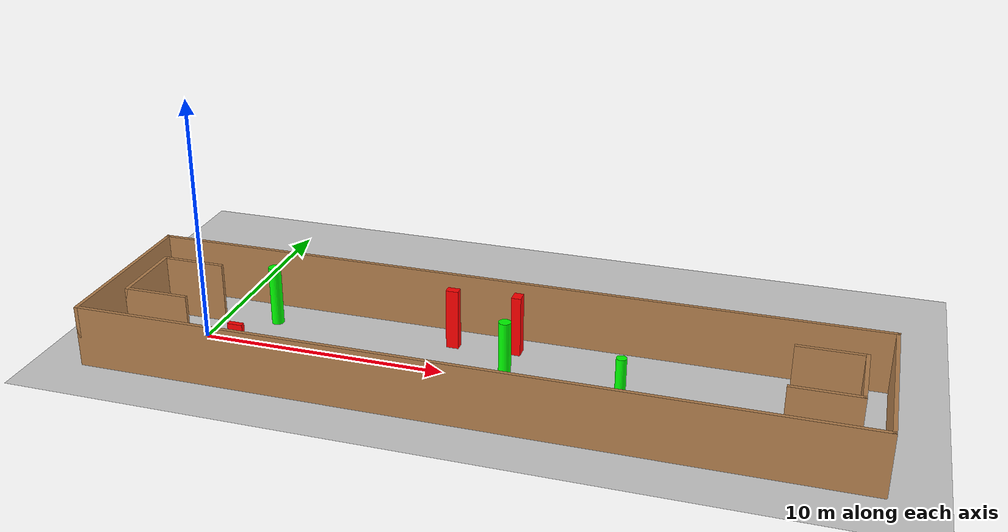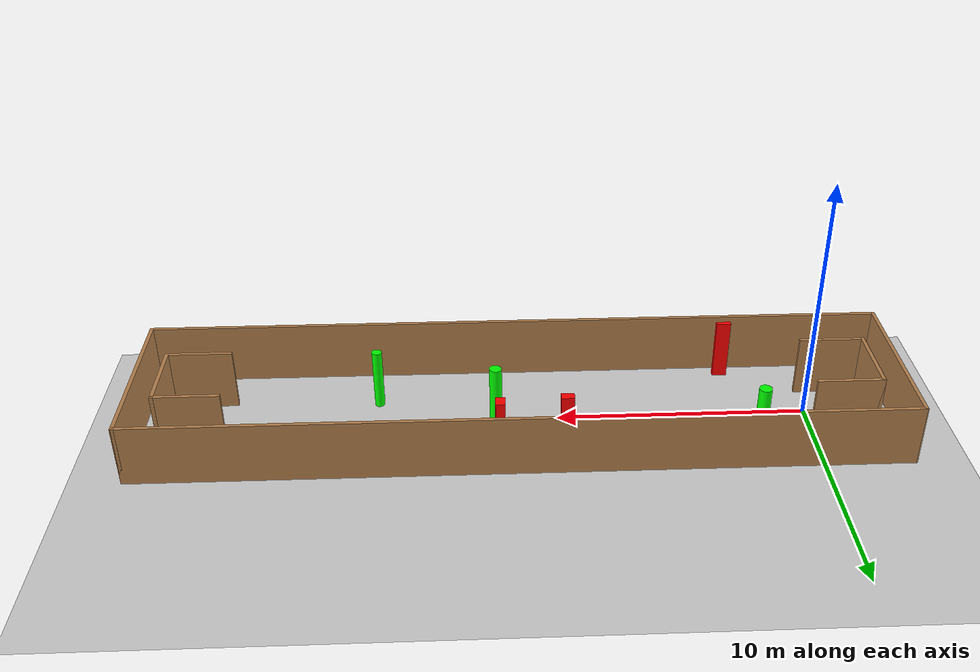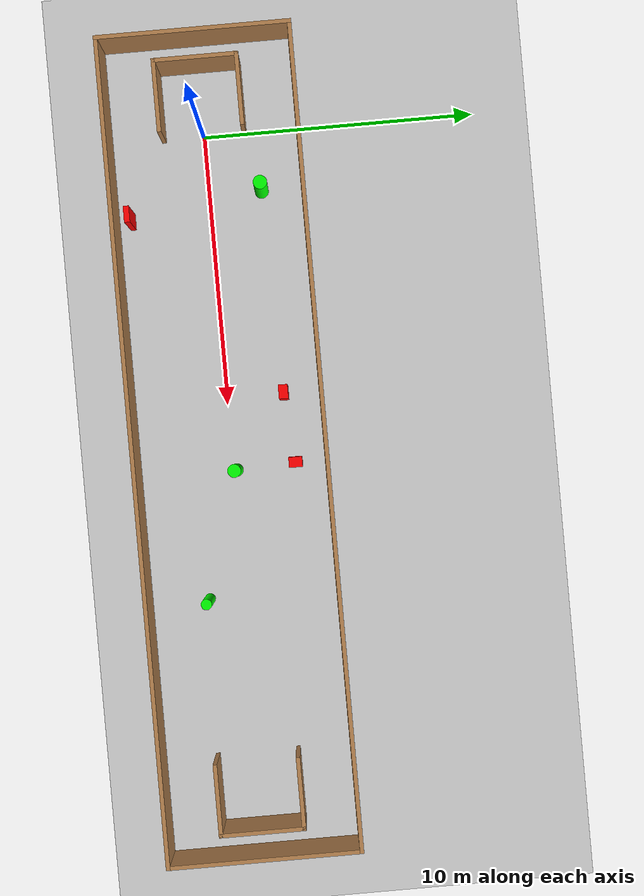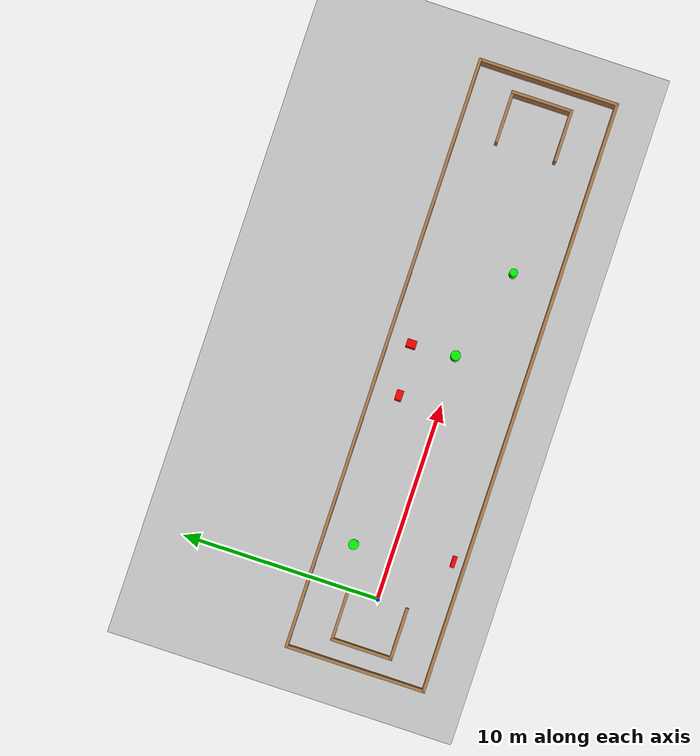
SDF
<sdf version="1.7">
 <world name="default">
  <light name="sun" type="directional">
   <pose>0 0 10 0 -0 0</pose>
   <diffuse>0.8 0.8 0.8 1</diffuse>
   <specular>0.2 0.2 0.2 1</specular>
   <attenuation>
    <range>1000</range>
    <constant>0.9</constant>
    <linear>0.01</linear>
    <quadratic>0.001</quadratic>
   </attenuation>
   <direction>-0.5 0.1 -0.9</direction>
   <spot><inner_angle>0</inner_angle><outer_angle>0</outer_angle><falloff>0</falloff></spot>
  </light>
  <model name="ground_plane">
   <static>1</static>
   <link name="link">
    <collision name="collision">
     <geometry><plane><normal>0 0 1</normal><size>100 100</size></plane></geometry>
     <surface>
      <contact><collide_bitmask>65535</collide_bitmask></contact>
      <friction><ode><mu>100</mu><mu2>50</mu2></ode></friction>
     </surface>
    </collision>
    <visual name="visual">
     <cast_shadows>0</cast_shadows>
     <geometry><plane><normal>0 0 1</normal><size>100 100</size></plane></geometry>
     <material>
      <script><uri>file://media/materials/scripts/gazebo.material</uri><name>Gazebo/Grey</name></script>
     </material>
    </visual>
   </link>
  </model>
  <gravity>0 0 -9.8</gravity>
  <magnetic_field>6e-06 2.3e-05 -4.2e-05</magnetic_field>
  <atmosphere type="adiabatic"/>
  <physics type="ode">
   <max_step_size>0.001</max_step_size>
   <real_time_factor>1</real_time_factor>
   <real_time_update_rate>1000</real_time_update_rate>
  </physics>
  <scene><ambient>0.4 0.4 0.4 1</ambient><background>0.7 0.7 0.7 1</background><shadows>1</shadows></scene>
  <spherical_coordinates>
   <surface_model>EARTH_WGS84</surface_model>
   <latitude_deg>0</latitude_deg>
   <longitude_deg>0</longitude_deg>
   <elevation>0</elevation>
   <heading_deg>0</heading_deg>
  </spherical_coordinates>
  <model name="my_base_walls">
   <link name="Wall_0">
    <collision name="Wall_0_Collision">
     <geometry><box><size>7.15 0.15 2.5</size></box></geometry>
     <pose>0 0 1.25 0 -0 0</pose>
    </collision>
    <visual name="Wall_0_Visual">
     <pose>0 0 1.25 0 -0 0</pose>
     <geometry><box><size>7.15 0.15 2.5</size></box></geometry>
     <material>
      <script><uri>file://media/materials/scripts/gazebo.material</uri><name>Gazebo/Wood</name></script>
      <ambient>1 1 1 1</ambient>
     </material>
     <meta><layer>0</layer></meta>
    </visual>
    <pose>-15 0 0 0 -0 1.5708</pose>
   </link>
   <link name="Wall_10">
    <collision name="Wall_10_Collision">
     <geometry><box><size>2.65 0.15 2.5</size></box></geometry>
     <pose>0 0 1.25 0 -0 0</pose>
    </collision>
    <visual name="Wall_10_Visual">
     <pose>0 0 1.25 0 -0 0</pose>
     <geometry><box><size>2.65 0.15 2.5</size></box></geometry>
     <material>
      <script><uri>file://media/materials/scripts/gazebo.material</uri><name>Gazebo/Wood</name></script>
      <ambient>1 1 1 1</ambient>
     </material>
     <meta><layer>0</layer></meta>
    </visual>
    <pose>-12.75 -1.5 0 0 -0 0</pose>
   </link>
   <link name="Wall_12">
    <collision name="Wall_12_Collision">
     <geometry><box><size>2.65 0.15 2.5</size></box></geometry>
     <pose>0 0 1.25 0 -0 0</pose>
    </collision>
    <visual name="Wall_12_Visual">
     <pose>0 0 1.25 0 -0 0</pose>
     <geometry><box><size>2.65 0.15 2.5</size></box></geometry>
     <material>
      <script><uri>file://media/materials/scripts/gazebo.material</uri><name>Gazebo/Wood</name></script>
      <ambient>1 1 1 1</ambient>
     </material>
     <meta><layer>0</layer></meta>
    </visual>
    <pose>-12.75 1.5 0 0 -0 0</pose>
   </link>
   <link name="Wall_14">
    <collision name="Wall_14_Collision">
     <geometry><box><size>3.15 0.15 2.5</size></box></geometry>
     <pose>0 0 1.25 0 -0 0</pose>
    </collision>
    <visual name="Wall_14_Visual">
     <pose>0 0 1.25 0 -0 0</pose>
     <geometry><box><size>3.15 0.15 2.5</size></box></geometry>
     <material>
      <script><uri>file://media/materials/scripts/gazebo.material</uri><name>Gazebo/Wood</name></script>
      <ambient>1 1 1 1</ambient>
     </material>
     <meta><layer>0</layer></meta>
    </visual>
    <pose>14 0 0 0 -0 -1.5708</pose>
   </link>
   <link name="Wall_15">
    <collision name="Wall_15_Collision">
     <geometry><box><size>2.65 0.15 2.5</size></box></geometry>
     <pose>0 0 1.25 0 -0 0</pose>
    </collision>
    <visual name="Wall_15_Visual">
     <pose>0 0 1.25 0 -0 0</pose>
     <geometry><box><size>2.65 0.15 2.5</size></box></geometry>
     <material>
      <script><uri>file://media/materials/scripts/gazebo.material</uri><name>Gazebo/Wood</name></script>
      <ambient>1 1 1 1</ambient>
     </material>
     <meta><layer>0</layer></meta>
    </visual>
    <pose>12.75 -1.5 0 0 -0 3.14159</pose>
   </link>
   <link name="Wall_17">
    <collision name="Wall_17_Collision">
     <geometry><box><size>2.65 0.15 2.5</size></box></geometry>
     <pose>0 0 1.25 0 -0 0</pose>
    </collision>
    <visual name="Wall_17_Visual">
     <pose>0 0 1.25 0 -0 0</pose>
     <geometry><box><size>2.65 0.15 2.5</size></box></geometry>
     <material>
      <script><uri>file://media/materials/scripts/gazebo.material</uri><name>Gazebo/Wood</name></script>
      <ambient>1 1 1 1</ambient>
     </material>
     <meta><layer>0</layer></meta>
    </visual>
    <pose>12.75 1.5 0 0 -0 3.14159</pose>
   </link>
   <link name="Wall_2">
    <collision name="Wall_2_Collision">
     <geometry><box><size>30.15 0.15 2.5</size></box></geometry>
     <pose>0 0 1.25 0 -0 0</pose>
    </collision>
    <visual name="Wall_2_Visual">
     <pose>0 0 1.25 0 -0 0</pose>
     <geometry><box><size>30.15 0.15 2.5</size></box></geometry>
     <material>
      <script><uri>file://media/materials/scripts/gazebo.material</uri><name>Gazebo/Wood</name></script>
      <ambient>1 1 1 1</ambient>
     </material>
     <meta><layer>0</layer></meta>
    </visual>
    <pose>-0 -3.5 0 0 -0 0</pose>
   </link>
   <link name="Wall_4">
    <collision name="Wall_4_Collision">
     <geometry><box><size>30.15 0.15 2.5</size></box></geometry>
     <pose>0 0 1.25 0 -0 0</pose>
    </collision>
    <visual name="Wall_4_Visual">
     <pose>0 0 1.25 0 -0 0</pose>
     <geometry><box><size>30.15 0.15 2.5</size></box></geometry>
     <material>
      <script><uri>file://media/materials/scripts/gazebo.material</uri><name>Gazebo/Wood</name></script>
      <ambient>1 1 1 1</ambient>
     </material>
     <meta><layer>0</layer></meta>
    </visual>
    <pose>-0 3.5 0 0 -0 0</pose>
   </link>
   <link name="Wall_6">
    <collision name="Wall_6_Collision">
     <geometry><box><size>7.15 0.15 2.5</size></box></geometry>
     <pose>0 0 1.25 0 -0 0</pose>
    </collision>
    <visual name="Wall_6_Visual">
     <pose>0 0 1.25 0 -0 0</pose>
     <geometry><box><size>7.15 0.15 2.5</size></box></geometry>
     <material>
      <script><uri>file://media/materials/scripts/gazebo.material</uri><name>Gazebo/Wood</name></script>
      <ambient>1 1 1 1</ambient>
     </material>
     <meta><layer>0</layer></meta>
    </visual>
    <pose>15 0 0 0 -0 -1.5708</pose>
   </link>
   <link name="Wall_9">
    <collision name="Wall_9_Collision">
     <geometry><box><size>3.15 0.15 2.5</size></box></geometry>
     <pose>0 0 1.25 0 -0 0</pose>
    </collision>
    <visual name="Wall_9_Visual">
     <pose>0 0 1.25 0 -0 0</pose>
     <geometry><box><size>3.15 0.15 2.5</size></box></geometry>
     <material>
      <script><uri>file://media/materials/scripts/gazebo.material</uri><name>Gazebo/Wood</name></script>
      <ambient>1 1 1 1</ambient>
     </material>
     <meta><layer>0</layer></meta>
    </visual>
    <pose>-14 0 0 0 -0 -1.5708</pose>
   </link>
   <static>1</static>
   <pose>11.5 0 0 0 -0 0</pose>
  </model>
  <model name="cylinder1">
   <static>1</static>
   <link name="link">
    <inertial>
     <mass>1</mass>
     <inertia><ixx>0.5</ixx><ixy>0</ixy><ixz>0</ixz><iyy>0.5</iyy><iyz>0</iyz><izz>1</izz></inertia>
    </inertial>
    <collision name="collision">
     <geometry><cylinder><radius>0.19859097454823282</radius><length>2.5</length></cylinder></geometry>
    </collision>
    <visual name="visual">
     <geometry><cylinder><radius>0.19859097454823282</radius><length>2.5</length></cylinder></geometry>
     <material>
      <ambient>0 1 0 1</ambient>
      <diffuse>0 1 0 1</diffuse>
      <specular>0.1 0.1 0.1 1</specular>
      <emissive>0 0 0 0</emissive>
     </material>
    </visual>
   </link>
   <pose>17.16561084465628 -1.2910538545188395 1.25 0 0 0</pose>
  </model>
  <model name="cylinder2">
   <static>1</static>
   <link name="link">
    <inertial>
     <mass>1</mass>
     <inertia><ixx>0.5</ixx><ixy>0</ixy><ixz>0</ixz><iyy>0.5</iyy><iyz>0</iyz><izz>1</izz></inertia>
    </inertial>
    <collision name="collision">
     <geometry><cylinder><radius>0.2424326527462114</radius><length>2.5</length></cylinder></geometry>
    </collision>
    <visual name="visual">
     <geometry><cylinder><radius>0.2424326527462114</radius><length>2.5</length></cylinder></geometry>
     <material>
      <ambient>0 1 0 1</ambient>
      <diffuse>0 1 0 1</diffuse>
      <specular>0.1 0.1 0.1 1</specular>
      <emissive>0 0 0 0</emissive>
     </material>
    </visual>
   </link>
   <pose>12.46180883476327 0.12202820491168831 1.25 0 0 0</pose>
  </model>
  <model name="cylinder3">
   <static>1</static>
   <link name="link">
    <inertial>
     <mass>1</mass>
     <inertia><ixx>0.5</ixx><ixy>0</ixy><ixz>0</ixz><iyy>0.5</iyy><iyz>0</iyz><izz>1</izz></inertia>
    </inertial>
    <collision name="collision">
     <geometry><cylinder><radius>0.2511631685254354</radius><length>2.5</length></cylinder></geometry>
    </collision>
    <visual name="visual">
     <geometry><cylinder><radius>0.2511631685254354</radius><length>2.5</length></cylinder></geometry>
     <material>
      <ambient>0 1 0 1</ambient>
      <diffuse>0 1 0 1</diffuse>
      <specular>0.1 0.1 0.1 1</specular>
      <emissive>0 0 0 0</emissive>
     </material>
    </visual>
   </link>
   <pose>2.195496342745928 1.9526067402316887 1.25 0 0 0</pose>
  </model>
  <model name="box1">
   <static>1</static>
   <link name="link">
    <inertial>
     <mass>1</mass>
     <inertia><ixx>0.083</ixx><ixy>0</ixy><ixz>0</ixz><iyy>0.083</iyy><iyz>0</iyz><izz>0.083</izz></inertia>
    </inertial>
    <collision name="collision">
     <geometry><box><size>0.5085019434536711 0.33366674119295625 2.5</size></box></geometry>
    </collision>
    <visual name="visual">
     <geometry><box><size>0.5085019434536711 0.33366674119295625 2.5</size></box></geometry>
     <material>
      <ambient>1 0 0 1</ambient>
      <diffuse>1 0 0 1</diffuse>
      <specular>0.1 0.1 0.1 1</specular>
      <emissive>0 0 0 0</emissive>
     </material>
    </visual>
    <sensor name="my_contact" type="contact">
     <contact><collision>box_collision</collision><topic>__default_topic__</topic></contact>
    </sensor>
   </link>
   <pose>9.770441264535418 2.1260215501181934 1.25 0 0 0</pose>
  </model>
  <model name="box2">
   <static>1</static>
   <link name="link">
    <inertial>
     <mass>1</mass>
     <inertia><ixx>0.083</ixx><ixy>0</ixy><ixz>0</ixz><iyy>0.083</iyy><iyz>0</iyz><izz>0.083</izz></inertia>
    </inertial>
    <collision name="collision">
     <geometry><box><size>0.37593558406973976 0.48421289744722146 2.5</size></box></geometry>
    </collision>
    <visual name="visual">
     <geometry><box><size>0.37593558406973976 0.48421289744722146 2.5</size></box></geometry>
     <material>
      <ambient>1 0 0 1</ambient>
      <diffuse>1 0 0 1</diffuse>
      <specular>0.1 0.1 0.1 1</specular>
      <emissive>0 0 0 0</emissive>
     </material>
    </visual>
    <sensor name="my_contact" type="contact">
     <contact><collision>box_collision</collision><topic>__default_topic__</topic></contact>
    </sensor>
   </link>
   <pose>12.335088874187285 2.3465121831223232 1.25 0 0 0</pose>
  </model>
  <model name="box3">
   <static>1</static>
   <link name="link">
    <inertial>
     <mass>1</mass>
     <inertia><ixx>0.083</ixx><ixy>0</ixy><ixz>0</ixz><iyy>0.083</iyy><iyz>0</iyz><izz>0.083</izz></inertia>
    </inertial>
    <collision name="collision">
     <geometry><box><size>0.5864577814730885 0.20292015504202457 2.5</size></box></geometry>
    </collision>
    <visual name="visual">
     <geometry><box><size>0.5864577814730885 0.20292015504202457 2.5</size></box></geometry>
     <material>
      <ambient>1 0 0 1</ambient>
      <diffuse>1 0 0 1</diffuse>
      <specular>0.1 0.1 0.1 1</specular>
      <emissive>0 0 0 0</emissive>
     </material>
    </visual>
    <sensor name="my_contact" type="contact">
     <contact><collision>box_collision</collision><topic>__default_topic__</topic></contact>
    </sensor>
   </link>
   <pose>2.919889835314507 -2.931072355237438 1.25 0 0 0</pose>
  </model>
 </world>
</sdf>
